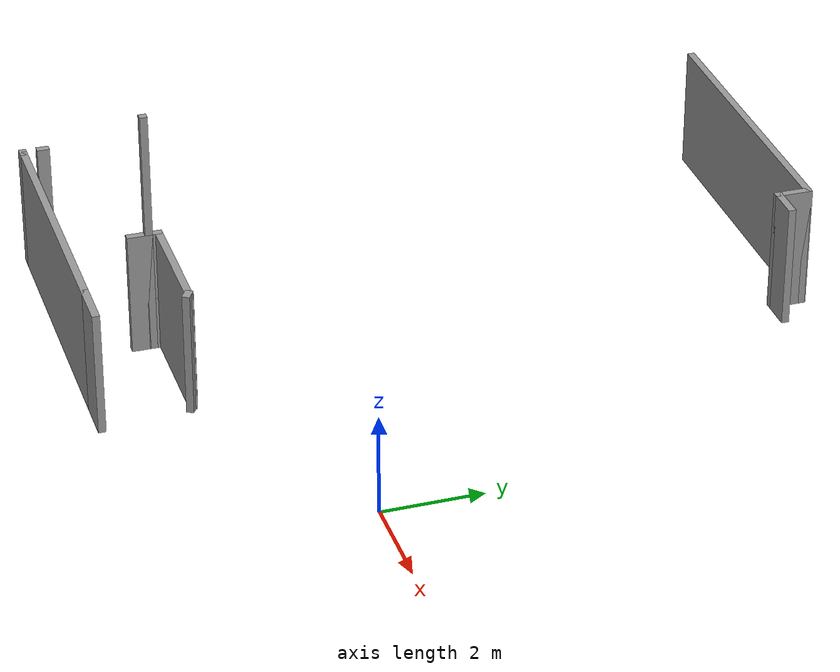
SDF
<sdf version="1.4">
 <model name="gdc">
  <pose>30.4954 -5.57665 0 0 -0 0</pose>
  <link name="Wall_1">
   <collision name="Wall_1_Collision">
    <geometry><box><size>6.25 0.15 2.5</size></box></geometry>
    <pose>0 0 1.25 0 -0 0</pose>
   </collision>
   <visual name="Wall_1_Visual">
    <pose>0 0 1.25 0 -0 0</pose>
    <geometry><box><size>6.25 0.15 2.5</size></box></geometry>
    <material>
     <script><uri>file://media/materials/scripts/gazebo.material</uri><name>Gazebo/Grey</name></script>
     <ambient>1 1 1 1</ambient>
    </material>
   </visual>
   <pose>-38.1221 15.6081 0 0 -0 0</pose>
  </link>
  <link name="Wall_160">
   <collision name="Wall_160_Collision">
    <geometry><box><size>1 0.15 2.5</size></box></geometry>
    <pose>0 0 1.25 0 -0 0</pose>
   </collision>
   <visual name="Wall_160_Visual">
    <pose>0 0 1.25 0 -0 0</pose>
    <geometry><box><size>1 0.15 2.5</size></box></geometry>
    <material>
     <script><uri>file://media/materials/scripts/gazebo.material</uri><name>Gazebo/Grey</name></script>
     <ambient>1 1 1 1</ambient>
    </material>
   </visual>
   <pose>-34.992 1.43281 0 0 -0 3.14159</pose>
  </link>
  <link name="Wall_161">
   <collision name="Wall_161_Collision">
    <geometry><box><size>5.75 0.15 2.5</size></box></geometry>
    <pose>0 0 1.25 0 -0 0</pose>
   </collision>
   <visual name="Wall_161_Visual">
    <pose>0 0 1.25 0 -0 0</pose>
    <geometry><box><size>5.75 0.15 2.5</size></box></geometry>
    <material>
     <script><uri>file://media/materials/scripts/gazebo.material</uri><name>Gazebo/Grey</name></script>
     <ambient>1 1 1 1</ambient>
    </material>
   </visual>
   <pose>-38.217 1.43281 0 0 -0 3.14159</pose>
  </link>
  <link name="Wall_163">
   <collision name="Wall_163_Collision">
    <geometry><box><size>0.25 0.15 2.5</size></box></geometry>
    <pose>0 0 1.25 0 -0 0</pose>
   </collision>
   <visual name="Wall_163_Visual">
    <pose>0 0 1.25 0 -0 0</pose>
    <geometry><box><size>0.25 0.15 2.5</size></box></geometry>
    <material>
     <script><uri>file://media/materials/scripts/gazebo.material</uri><name>Gazebo/Grey</name></script>
     <ambient>1 1 1 1</ambient>
    </material>
   </visual>
   <pose>-41.067 1.43281 0 0 -0 3.14159</pose>
  </link>
  <link name="Wall_165">
   <collision name="Wall_165_Collision">
    <geometry><box><size>0.25 0.15 2.5</size></box></geometry>
    <pose>0 0 1.25 0 -0 0</pose>
   </collision>
   <visual name="Wall_165_Visual">
    <pose>0 0 1.25 0 -0 0</pose>
    <geometry><box><size>0.25 0.15 2.5</size></box></geometry>
    <material>
     <script><uri>file://media/materials/scripts/gazebo.material</uri><name>Gazebo/Grey</name></script>
     <ambient>1 1 1 1</ambient>
    </material>
   </visual>
   <pose>-41.117 1.83281 0 0 -0 1.5708</pose>
  </link>
  <link name="Wall_21">
   <collision name="Wall_21_Collision">
    <geometry><box><size>0.5 0.15 2.5</size></box></geometry>
    <pose>0 0 1.25 0 -0 0</pose>
   </collision>
   <visual name="Wall_21_Visual">
    <pose>0 0 1.25 0 -0 0</pose>
    <geometry><box><size>0.5 0.15 2.5</size></box></geometry>
    <material>
     <script><uri>file://media/materials/scripts/gazebo.material</uri><name>Gazebo/Grey</name></script>
     <ambient>1 1 1 1</ambient>
    </material>
   </visual>
   <pose>-37.1771 2.86098 0 0 -0 1.5708</pose>
  </link>
  <link name="Wall_22">
   <collision name="Wall_22_Collision">
    <geometry><box><size>0.15 0.15 2.5</size></box></geometry>
    <pose>0 0 1.25 0 -0 0</pose>
   </collision>
   <visual name="Wall_22_Visual">
    <pose>0 0 1.25 0 -0 0</pose>
    <geometry><box><size>0.15 0.15 2.5</size></box></geometry>
    <material>
     <script><uri>file://media/materials/scripts/gazebo.material</uri><name>Gazebo/Grey</name></script>
     <ambient>1 1 1 1</ambient>
    </material>
   </visual>
   <pose>-37.1771 3.03598 0 0 -0 0</pose>
  </link>
  <link name="Wall_23">
   <collision name="Wall_23_Collision">
    <geometry><box><size>0.15 0.15 2.5</size></box></geometry>
    <pose>0 0 1.25 0 -0 0</pose>
   </collision>
   <visual name="Wall_23_Visual">
    <pose>0 0 1.25 0 -0 0</pose>
    <geometry><box><size>0.15 0.15 2.5</size></box></geometry>
    <material>
     <script><uri>file://media/materials/scripts/gazebo.material</uri><name>Gazebo/Grey</name></script>
     <ambient>1 1 1 1</ambient>
    </material>
   </visual>
   <pose>-37.1771 3.03598 0 0 -0 0</pose>
  </link>
  <link name="Wall_24">
   <collision name="Wall_24_Collision">
    <geometry><box><size>0.15 0.15 2.5</size></box></geometry>
    <pose>0 0 1.25 0 -0 0</pose>
   </collision>
   <visual name="Wall_24_Visual">
    <pose>0 0 1.25 0 -0 0</pose>
    <geometry><box><size>0.15 0.15 2.5</size></box></geometry>
    <material>
     <script><uri>file://media/materials/scripts/gazebo.material</uri><name>Gazebo/Grey</name></script>
     <ambient>1 1 1 1</ambient>
    </material>
   </visual>
   <pose>-37.1771 3.03598 0 0 -0 0</pose>
  </link>
  <link name="Wall_25">
   <collision name="Wall_25_Collision">
    <geometry><box><size>0.25 0.15 2.5</size></box></geometry>
    <pose>0 0 1.25 0 -0 0</pose>
   </collision>
   <visual name="Wall_25_Visual">
    <pose>0 0 1.25 0 -0 0</pose>
    <geometry><box><size>0.25 0.15 2.5</size></box></geometry>
    <material>
     <script><uri>file://media/materials/scripts/gazebo.material</uri><name>Gazebo/Grey</name></script>
     <ambient>1 1 1 1</ambient>
    </material>
   </visual>
   <pose>-37.1771 3.08598 0 0 -0 1.5708</pose>
  </link>
  <link name="Wall_26">
   <collision name="Wall_26_Collision">
    <geometry><box><size>0.25 0.15 2.5</size></box></geometry>
    <pose>0 0 1.25 0 -0 0</pose>
   </collision>
   <visual name="Wall_26_Visual">
    <pose>0 0 1.25 0 -0 0</pose>
    <geometry><box><size>0.25 0.15 2.5</size></box></geometry>
    <material>
     <script><uri>file://media/materials/scripts/gazebo.material</uri><name>Gazebo/Grey</name></script>
     <ambient>1 1 1 1</ambient>
    </material>
   </visual>
   <pose>-37.1771 3.18598 0 0 -0 1.5708</pose>
  </link>
  <link name="Wall_27">
   <collision name="Wall_27_Collision">
    <geometry><box><size>2.5 0.15 2.5</size></box></geometry>
    <pose>0 0 1.25 0 -0 0</pose>
   </collision>
   <visual name="Wall_27_Visual">
    <pose>0 0 1.25 0 -0 0</pose>
    <geometry><box><size>2.5 0.15 2.5</size></box></geometry>
    <material>
     <script><uri>file://media/materials/scripts/gazebo.material</uri><name>Gazebo/Grey</name></script>
     <ambient>1 1 1 1</ambient>
    </material>
   </visual>
   <pose>-36.0021 3.23598 0 0 -0 0</pose>
  </link>
  <link name="Wall_28">
   <collision name="Wall_28_Collision">
    <geometry><box><size>0.25 0.15 2.5</size></box></geometry>
    <pose>0 0 1.25 0 -0 0</pose>
   </collision>
   <visual name="Wall_28_Visual">
    <pose>0 0 1.25 0 -0 0</pose>
    <geometry><box><size>0.25 0.15 2.5</size></box></geometry>
    <material>
     <script><uri>file://media/materials/scripts/gazebo.material</uri><name>Gazebo/Grey</name></script>
     <ambient>1 1 1 1</ambient>
    </material>
   </visual>
   <pose>-34.7838 3.21098 0 0 0 -0.523599</pose>
  </link>
  <link name="Wall_514">
   <collision name="Wall_514_Collision">
    <geometry><box><size>0.15 0.15 2.5</size></box></geometry>
    <pose>0 0 1.25 0 -0 0</pose>
   </collision>
   <visual name="Wall_514_Visual">
    <pose>0 0 1.25 0 -0 0</pose>
    <geometry><box><size>0.15 0.15 2.5</size></box></geometry>
    <material>
     <script><uri>file://media/materials/scripts/gazebo.material</uri><name>Gazebo/Grey</name></script>
     <ambient>1 1 1 1</ambient>
    </material>
   </visual>
   <pose>-37.1771 3.03598 2.5 0 -0 0</pose>
  </link>
  <link name="Wall_515">
   <collision name="Wall_515_Collision">
    <geometry><box><size>0.15 0.15 2.5</size></box></geometry>
    <pose>0 0 1.25 0 -0 0</pose>
   </collision>
   <visual name="Wall_515_Visual">
    <pose>0 0 1.25 0 -0 0</pose>
    <geometry><box><size>0.15 0.15 2.5</size></box></geometry>
    <material>
     <script><uri>file://media/materials/scripts/gazebo.material</uri><name>Gazebo/Grey</name></script>
     <ambient>1 1 1 1</ambient>
    </material>
   </visual>
   <pose>-37.1771 3.03598 2.5 0 -0 0</pose>
  </link>
  <link name="Wall_516">
   <collision name="Wall_516_Collision">
    <geometry><box><size>0.15 0.15 2.5</size></box></geometry>
    <pose>0 0 1.25 0 -0 0</pose>
   </collision>
   <visual name="Wall_516_Visual">
    <pose>0 0 1.25 0 -0 0</pose>
    <geometry><box><size>0.15 0.15 2.5</size></box></geometry>
    <material>
     <script><uri>file://media/materials/scripts/gazebo.material</uri><name>Gazebo/Grey</name></script>
     <ambient>1 1 1 1</ambient>
    </material>
   </visual>
   <pose>-37.1771 3.03598 2.5 0 -0 0</pose>
  </link>
  <link name="Wall_6">
   <collision name="Wall_6_Collision">
    <geometry><box><size>0.75 0.15 2.5</size></box></geometry>
    <pose>0 0 1.25 0 -0 0</pose>
   </collision>
   <visual name="Wall_6_Visual">
    <pose>0 0 1.25 0 -0 0</pose>
    <geometry><box><size>0.75 0.15 2.5</size></box></geometry>
    <material>
     <script><uri>file://media/materials/scripts/gazebo.material</uri><name>Gazebo/Grey</name></script>
     <ambient>1 1 1 1</ambient>
    </material>
   </visual>
   <pose>-35.0721 15.3081 0 0 0 -1.5708</pose>
  </link>
  <link name="Wall_7">
   <collision name="Wall_7_Collision">
    <geometry><box><size>0.75 0.15 2.5</size></box></geometry>
    <pose>0 0 1.25 0 -0 0</pose>
   </collision>
   <visual name="Wall_7_Visual">
    <pose>0 0 1.25 0 -0 0</pose>
    <geometry><box><size>0.75 0.15 2.5</size></box></geometry>
    <material>
     <script><uri>file://media/materials/scripts/gazebo.material</uri><name>Gazebo/Grey</name></script>
     <ambient>1 1 1 1</ambient>
    </material>
   </visual>
   <pose>-34.7721 15.0081 0 0 -0 0</pose>
  </link>
  <static>1</static>
 </model>
</sdf>
